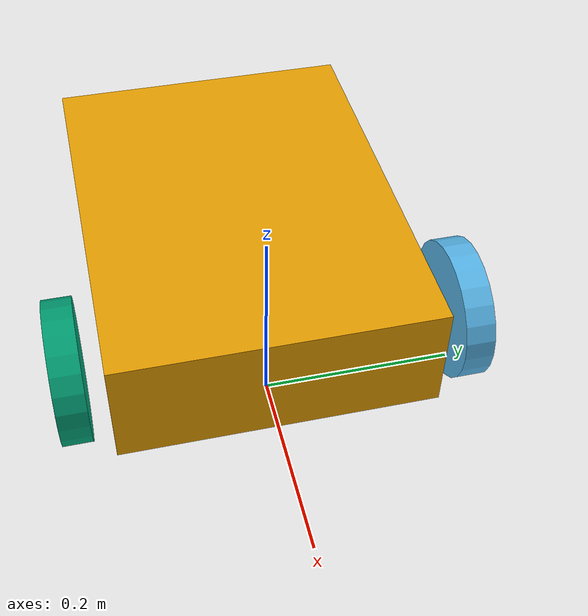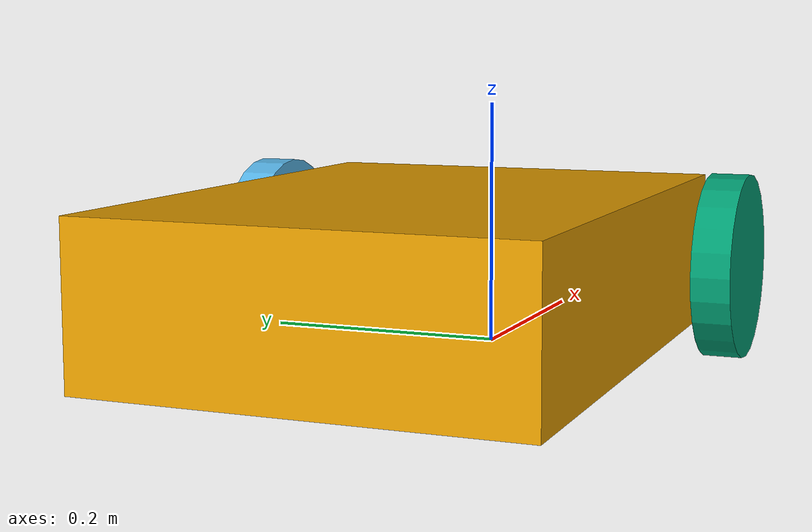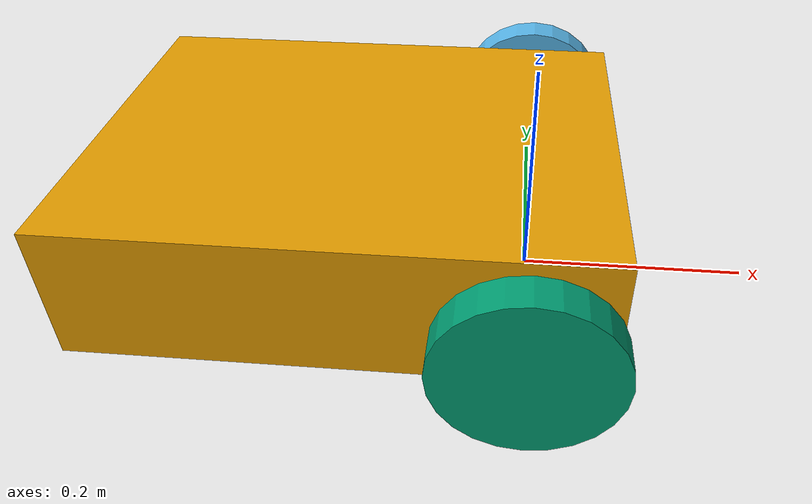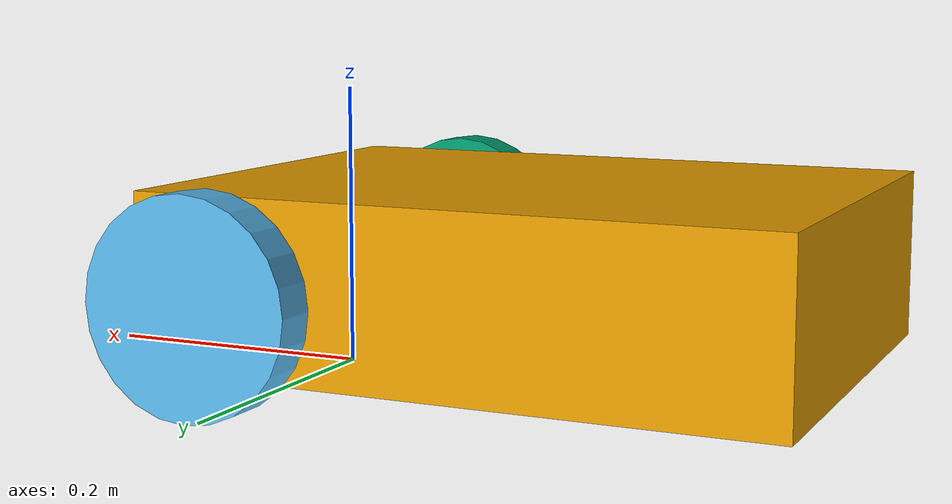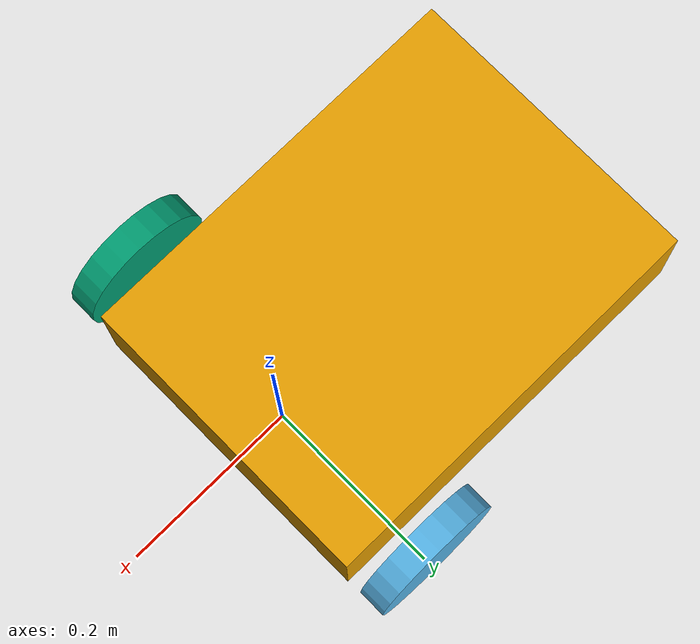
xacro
<?xml version="1.0"?>
<!-- maxon EPOS4 example with 2 DOF -->
<robot name="maxon_epos4" xmlns:xacro="http://www.ros.org/wiki/xacro">
  <xacro:property name="PI" value="3.1415926535897931"/>
  <!-- Base link -->
  <link name="base_link">
    <visual>
      <origin xyz="-0.15 0 0.08" rpy="0 0 0"/>
      <geometry>
        <box size=".44 .33 .12"/>
      </geometry>
    </visual>
  </link>

  <!-- left wheel link -->
  <link name="left_wheel_link">
    <visual>
      <origin xyz="0 0 0" rpy="0 ${PI/2} ${PI/2}"/>
      <geometry>
        <cylinder length="0.03" radius="0.0725"/>
      </geometry>
    </visual>
  </link>

  <!-- Joint between Base link and left wheel link -->
  <joint name="left_wheel_joint" type="continuous">
    <parent link="base_link"/>
    <child link="left_wheel_link"/>
    <origin xyz="0 0.2 0.075" rpy="0 0 0"/>
    <axis xyz="0 1 0"/>
    <!--dynamics damping="0.7"/-->
    <!--limit effort="100.0" velocity="1300"/-->
  </joint>

  <!-- right wheel Link -->
  <link name="right_wheel_link">
    <visual>
      <origin xyz="0 0 0" rpy="0 ${PI/2} ${PI/2}"/>
      <geometry>
        <cylinder length="0.03" radius="0.0725"/>
      </geometry>
    </visual>
  </link>

  <!-- Joint between Base link and right wheel link -->
  <joint name="right_wheel_joint" type="continuous">
    <parent link="base_link"/>
    <child link="right_wheel_link"/>
    <origin xyz="0 -0.2 0.075" rpy="0 0 0"/>
    <axis xyz="0 1 0"/>
    <!--dynamics damping="0.7"/-->
    <!--limit effort="100.0" velocity="1300"/-->
  </joint>

  <transmission name="transmission_base_link1">
    <type>transmission_interface/SimpleTransmission</type>
    <joint name="left_wheel_joint">
      <hardwareInterface>hardware_interface/EffortJointInterface</hardwareInterface>
    </joint>
    <actuator name="left_maxon_motor">
      <hardwareInterface>EffortJointInterface</hardwareInterface>
      <mechanicalReduction>1</mechanicalReduction>
    </actuator>
  </transmission>

  <transmission name="transmission_base_link2">
    <type>transmission_interface/SimpleTransmission</type>
    <joint name="right_wheel_joint">
      <hardwareInterface>hardware_interface/EffortJointInterface</hardwareInterface>
    </joint>
    <actuator name="right_maxon_motor">
      <hardwareInterface>EffortJointInterface</hardwareInterface>
      <mechanicalReduction>1</mechanicalReduction>
    </actuator>
  </transmission>

</robot>
